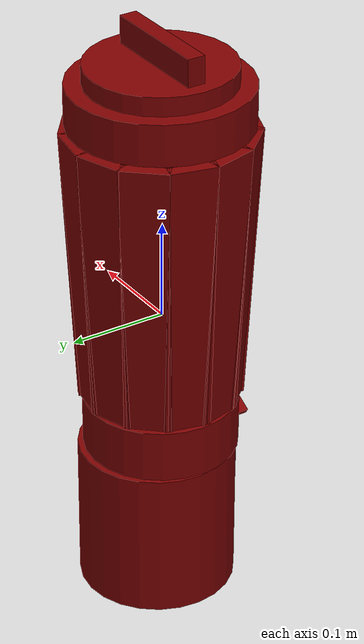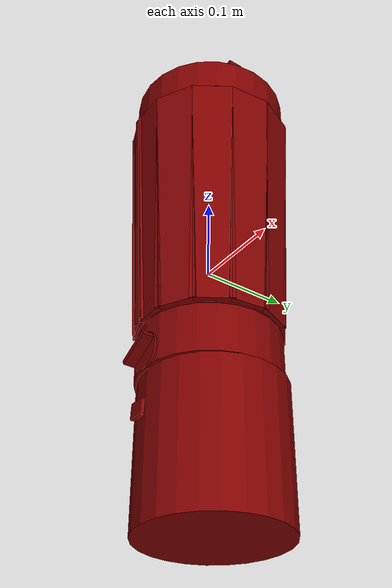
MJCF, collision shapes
<?xml version='1.0' encoding='UTF-8'?>
<mujoco model="model">
  <option timestep="0.0005" gravity="0.0 0.0 -9.81"/>
  <compiler angle="radian"/>
  <asset>
    <mesh file="visuals/Blade001.obj" name="Blade001_vis"/>
    <mesh file="visuals/Body001.obj" name="Body001_vis"/>
    <mesh file="visuals/Button001.obj" name="Button001_vis"/>
    <mesh file="visuals/Jug001.obj" name="Jug001_vis"/>
    <mesh file="visuals/Jug001_Clear.obj" name="Jug001_Clear_vis"/>
    <mesh file="visuals/Knob001.obj" name="Knob001_vis"/>
    <mesh file="visuals/Lid001.obj" name="Lid001_vis"/>
    <texture file="visuals/T_BC001.png" name="Body001_material" type="2d"/>
    <material name="Body001_material" rgba="1 1 1 1.0" texture="Body001_material" shininess="0.18054693937301636" specular="0.3103448502657381"/>
    <texture file="visuals/T_BC001.png" name="Button001_material" type="2d"/>
    <material name="Button001_material" rgba="1 1 1 1.0" texture="Button001_material" shininess="0.18054693937301636" specular="0.3103448502657381"/>
    <material name="Jug001_Clear_material" rgba="0.07069122791290283 0.07069122791290283 0.07069122791290283 0.800000011920929" shininess="0.4472135901451111" specular="0.3103448502657381"/>
    <texture file="visuals/T_BC001.png" name="Blade001_material" type="2d"/>
    <material name="Blade001_material" rgba="1 1 1 1.0" texture="Blade001_material" shininess="0.18054693937301636" specular="5"/>
    <texture file="visuals/T_BC001.png" name="Jug001_material" type="2d"/>
    <material name="Jug001_material" rgba="1 1 1 1.0" texture="Jug001_material" shininess="0.18054693937301636" specular="0.3103448502657381"/>
    <texture file="visuals/T_BC001.png" name="Knob001_material" type="2d"/>
    <material name="Knob001_material" rgba="1 1 1 1.0" texture="Knob001_material" shininess="0.18054693937301636" specular="0.3103448502657381"/>
    <texture file="visuals/T_BC001.png" name="Lid001_material" type="2d"/>
    <material name="Lid001_material" rgba="1 1 1 1.0" texture="Lid001_material" shininess="0.18054693937301636" specular="0.3103448502657381"/>
  </asset>
  <default>
    <default class="visual">
      <geom conaffinity="0" contype="0" group="1" type="mesh"/>
    </default>
    <default class="collision">
      <geom group="0" rgba="0.5 0 0 0.5"/>
    </default>
    <default class="spawn">
      <geom group="0" rgba="1 1 1 0.5" contype="0" conaffinity="0"/>
      <site group="0" rgba="1 1 1 0.5"/>
    </default>
    <default class="region">
      <geom group="1" conaffinity="0" contype="0" rgba="0 1 0 0"/>
    </default>
  </default>
  <worldbody>
    <body>
      <body name="object">
        <geom mesh="Body001_vis" type="mesh" solimp="0.998 0.998 0.001" solref="0.001 1" friction="0.95 0.3 0.1" class="visual" material="Body001_material"/>
        <geom class="collision" type="cylinder" pos="0.00003150 0.00165160 -0.11491977" size="0.07805658876895905 0.026969674974679947" quat="1.0 0.0 0.0 0.0"/>
        <geom class="collision" type="cylinder" pos="0.00003150 0.00632646 -0.21992963" size="0.07937656342983246 0.07767137885093689" quat="1.0 0.0 0.0 0.0"/>
        <body name="Button001">
          <joint axis="0.0 0.9989084601402283 -0.046709202229976654" pos="0.00000293 -0.08181651 -0.19053080" limited="true" name="Button001_joint" range="0.0 0.002" type="slide" damping="1" frictionloss="1" armature=".01" stiffness="0.5" springref="-0.5"/>
          <geom mesh="Button001_vis" type="mesh" solimp="0.998 0.998 0.001" solref="0.001 1" friction="0.95 0.3 0.1" class="visual" material="Button001_material"/>
          <geom class="collision" type="box" pos="0.00020361 -0.08274168 -0.19018896" size="0.00850411131978035 0.0017433171160519123 0.008499964140355587" quat="0.9996948838233948 -0.02470068261027336 0.0 0.0"/>
        </body>
        <body name="Jug001_Clear">
          <geom class="region" name="reg_int" type="box" pos="0.000519310000000002 0.0009592050000000012 0.08777257" size="0.04988977 0.049559065 0.0947827"/>
          <joint axis="0.0 0.0 1.0" pos="-0.00000003 0.00165162 0.05987051" limited="true" name="Jug001_Clear_joint" range="0.0 0.05" type="slide" damping="1" frictionloss="1" armature=".01" stiffness="0.05"/>
          <geom mesh="Jug001_Clear_vis" type="mesh" solimp="0.998 0.998 0.001" solref="0.001 1" friction="0.95 0.3 0.1" class="visual" material="Jug001_Clear_material"/>
          <geom class="collision" type="box" pos="0.00003150 -0.07883070 0.06058837" size="0.023384518921375275 0.006012120749801397 0.1433258205652237" quat="0.9996532201766968 0.026332691311836243 5.847014254566313e-18 1.6191408536630397e-24"/>
          <geom class="collision" type="box" pos="0.03787395 -0.06937903 0.06058838" size="0.023384520784020424 0.006012120749801397 0.1433258205652237" quat="0.9698599576950073 0.02554771862924099 0.006380902603268623 0.2422359734773636"/>
          <geom class="collision" type="box" pos="0.06703880 -0.04292891 0.06058838" size="0.023384518921375275 0.006012120749801397 0.1433258205652237" quat="0.8811467885971069 0.02321087196469307 0.012436125427484512 0.47210901975631714"/>
          <geom class="collision" type="box" pos="0.08013432 -0.00615469 0.06058838" size="0.023384517058730125 0.006012119818478823 0.1433258205652237" quat="0.7403488159179688 0.019502002745866776 0.01769385300576687 0.6717069745063782"/>
          <geom class="collision" type="box" pos="0.07372761 0.03399791 0.06058838" size="0.023384518921375275 0.00601212028414011 0.1433258205652237" quat="0.5466622710227966 0.014399973675608635 0.022046340629458427 0.8369390368461609"/>
          <geom class="collision" type="box" pos="0.04918063 0.06538356 0.06058838" size="0.023384518921375275 0.00601212028414011 0.1433258205652237" quat="0.32247495651245117 0.008494513109326363 0.024924755096435547 0.9462116360664368"/>
          <geom class="collision" type="box" pos="0.01321279 0.08104715 0.06058837" size="0.023384518921375275 0.006012120749801397 0.1433258205652237" quat="0.08213873952627182 0.0021636674646288157 0.026243530213832855 0.9962729811668396"/>
          <geom class="collision" type="box" pos="-0.02671975 0.07755792 0.06058837" size="0.023384518921375275 0.006012120749801397 0.1433258205652237" quat="0.16854876279830933 0.004439873620867729 -0.02595558390021324 -0.985341489315033"/>
          <geom class="collision" type="box" pos="-0.06019914 0.05503391 0.06058838" size="0.023384517058730125 0.00601212028414011 0.1433258205652237" quat="0.41017454862594604 0.0108046755194664 -0.02401377260684967 -0.9116268157958984"/>
          <geom class="collision" type="box" pos="-0.07832751 0.02001645 0.06058838" size="0.023384518921375275 0.00601212028414011 0.1433258205652237" quat="0.6209990978240967 0.01635812036693096 -0.020635200664401054 -0.7833688259124756"/>
          <geom class="collision" type="box" pos="-0.07780537 -0.01881358 0.06058838" size="0.023384522646665573 0.006012119818478823 0.1433258205652237" quat="0.7916476130485535 0.02085329033434391 -0.01607920043170452 -0.610410213470459"/>
          <geom class="collision" type="box" pos="-0.05887960 -0.05318346 0.06058838" size="0.023384518921375275 0.00601212028414011 0.1433258205652237" quat="0.9165601134300232 0.024143684655427933 -0.01051107794046402 -0.39902907609939575"/>
          <geom class="collision" type="box" pos="-0.02949975 -0.07321699 0.06058838" size="0.023384518921375275 0.00601212028414011 0.1433258205652237" quat="0.9820668697357178 0.02586924470961094 -0.004917584825307131 -0.18668484687805176"/>
          <geom class="collision" type="cylinder" pos="0.00003150 0.00165160 -0.08484465" size="0.07545583695173264 0.0007141885580495" quat="1.0 0.0 0.0 0.0"/>
          <body name="Blade001">
            <joint axis="0.0 0.0 1.0" pos="0.00000141 0.00105925 -0.03818458" limited="false" name="Blade001_joint" range="0 360" type="hinge" damping="1" frictionloss="1" armature=".01" stiffness="0.05"/>
            <geom mesh="Blade001_vis" type="mesh" solimp="0.998 0.998 0.001" solref="0.001 1" friction="0.95 0.3 0.1" class="visual" material="Blade001_material"/>
            <geom class="collision" type="cylinder" pos="0.00003150 0.00165160 -0.03613366" size="0.03686840087175369 0.021862994879484177" quat="1.0 0.0 0.0 0.0"/>
          </body>
          <body name="Jug001">
            <geom mesh="Jug001_vis" type="mesh" solimp="0.998 0.998 0.001" solref="0.001 1" friction="0.95 0.3 0.1" class="visual" material="Jug001_material"/>
            <geom class="collision" type="box" pos="0.00003150 -0.07883070 0.06058837" size="0.023384518921375275 0.006012120749801397 0.1433258205652237" quat="0.9996532201766968 0.026332691311836243 5.847014254566313e-18 1.6191408536630397e-24"/>
            <geom class="collision" type="box" pos="0.03787395 -0.06937903 0.06058838" size="0.023384520784020424 0.006012120749801397 0.1433258205652237" quat="0.9698599576950073 0.02554771862924099 0.006380902603268623 0.2422359734773636"/>
            <geom class="collision" type="box" pos="0.06703880 -0.04292891 0.06058838" size="0.023384518921375275 0.006012120749801397 0.1433258205652237" quat="0.8811467885971069 0.02321087196469307 0.012436125427484512 0.47210901975631714"/>
            <geom class="collision" type="box" pos="0.08013432 -0.00615469 0.06058838" size="0.023384517058730125 0.006012119818478823 0.1433258205652237" quat="0.7403488159179688 0.019502002745866776 0.01769385300576687 0.6717069745063782"/>
            <geom class="collision" type="box" pos="0.07372761 0.03399791 0.06058838" size="0.023384518921375275 0.00601212028414011 0.1433258205652237" quat="0.5466622710227966 0.014399973675608635 0.022046340629458427 0.8369390368461609"/>
            <geom class="collision" type="box" pos="0.04918063 0.06538356 0.06058838" size="0.023384518921375275 0.00601212028414011 0.1433258205652237" quat="0.32247495651245117 0.008494513109326363 0.024924755096435547 0.9462116360664368"/>
            <geom class="collision" type="box" pos="0.01321279 0.08104715 0.06058837" size="0.023384518921375275 0.006012120749801397 0.1433258205652237" quat="0.08213873952627182 0.0021636674646288157 0.026243530213832855 0.9962729811668396"/>
            <geom class="collision" type="box" pos="-0.02671975 0.07755792 0.06058837" size="0.023384518921375275 0.006012120749801397 0.1433258205652237" quat="0.16854876279830933 0.004439873620867729 -0.02595558390021324 -0.985341489315033"/>
            <geom class="collision" type="box" pos="-0.06019914 0.05503391 0.06058838" size="0.023384517058730125 0.00601212028414011 0.1433258205652237" quat="0.41017454862594604 0.0108046755194664 -0.02401377260684967 -0.9116268157958984"/>
            <geom class="collision" type="box" pos="-0.07832751 0.02001645 0.06058838" size="0.023384518921375275 0.00601212028414011 0.1433258205652237" quat="0.6209990978240967 0.01635812036693096 -0.020635200664401054 -0.7833688259124756"/>
            <geom class="collision" type="box" pos="-0.07780537 -0.01881358 0.06058838" size="0.023384522646665573 0.006012119818478823 0.1433258205652237" quat="0.7916476130485535 0.02085329033434391 -0.01607920043170452 -0.610410213470459"/>
            <geom class="collision" type="box" pos="-0.05887960 -0.05318346 0.06058838" size="0.023384518921375275 0.00601212028414011 0.1433258205652237" quat="0.9165601134300232 0.024143684655427933 -0.01051107794046402 -0.39902907609939575"/>
            <geom class="collision" type="box" pos="-0.02949975 -0.07321699 0.06058838" size="0.023384518921375275 0.00601212028414011 0.1433258205652237" quat="0.9820668697357178 0.02586924470961094 -0.004917584825307131 -0.18668484687805176"/>
            <geom class="collision" type="cylinder" pos="0.00003150 0.00165160 -0.07455194" size="0.05780214071273804 0.009653287939727306" quat="1.0 0.0 0.0 0.0"/>
            <geom class="collision" type="cylinder" pos="0.00003150 0.00165160 -0.08484465" size="0.07545583695173264 0.0007141885580495" quat="1.0 0.0 0.0 0.0"/>
          </body>
        </body>
        <body name="Knob001">
          <joint axis="0.0 1.0 0.0" pos="0.00079310 -0.06914690 -0.12570380" limited="true" name="Knob001_joint" range="0.0 4.1887902047863905" type="hinge" damping="0.05" frictionloss="0.1" armature="0.001"/>
          <geom mesh="Knob001_vis" type="mesh" solimp="0.998 0.998 0.001" solref="0.001 1" friction="0.95 0.3 0.1" class="visual" material="Knob001_material"/>
          <geom class="collision" type="cylinder" pos="0.00084266 -0.07820336 -0.12568178" size="0.020389603450894356 0.0012918240390717983" quat="0.7071067094802856 0.70710688829422 -1.5700929612083792e-16 2.2148514736588345e-23" density="0.001"/>
          <geom class="collision" type="box" pos="0.00084266 -0.08473472 -0.12568178" size="0.019798679277300835 0.006978995632380247 0.002770190592855215" quat="0.9689902663230896 -5.815854741394522e-16 -0.2470989227294922 8.45783443281789e-09" density="0.001"/>
        </body>
        <body name="Lid001">
          <joint axis="0.0 0.0 1.0" pos="-0.00000006 0.00165598 0.24213963" limited="true" name="Lid001_joint" range="0.0 0.05" type="slide" damping="1" frictionloss="1" armature=".01" stiffness="0.05"/>
          <geom mesh="Lid001_vis" type="mesh" solimp="0.998 0.998 0.001" solref="0.001 1" friction="0.95 0.3 0.1" class="visual" material="Lid001_material"/>
          <geom class="collision" type="cylinder" pos="0.00003150 0.00165160 0.22878751" size="0.09070291370153427 0.021028811112046242" quat="1.0 0.0 0.0 0.0"/>
          <geom class="collision" type="cylinder" pos="0.00003150 0.00165160 0.25844973" size="0.07395417243242264 0.010420814156532288" quat="1.0 0.0 0.0 0.0"/>
          <geom class="collision" type="box" pos="-0.00056168 0.00090916 0.28192459" size="0.058140646666288376 0.008980998769402504 0.014717262238264084" quat="1.0 0.0 0.0 0.0"/>
        </body>
        <geom class="region" name="reg_main" type="box" pos="5.209999999998549e-06 0.0014792399999999997 3.1239999999987944e-05" size="0.09088413000000001 0.09106175 0.29762168"/>
      </body>
    </body>
  </worldbody>
  <actuator>
    <motor name="Button001_joint_actuator" joint="Button001_joint" gear="0.5"/>
    <motor name="Jug001_Clear_joint_actuator" joint="Jug001_Clear_joint" gear="0.5"/>
    <motor name="Knob001_joint_actuator" joint="Knob001_joint" gear="10"/>
    <motor name="Lid001_joint_actuator" joint="Lid001_joint" gear="0.5"/>
    <motor name="Blade001_joint_actuator" joint="Blade001_joint" gear="10"/>
  </actuator>
</mujoco>
